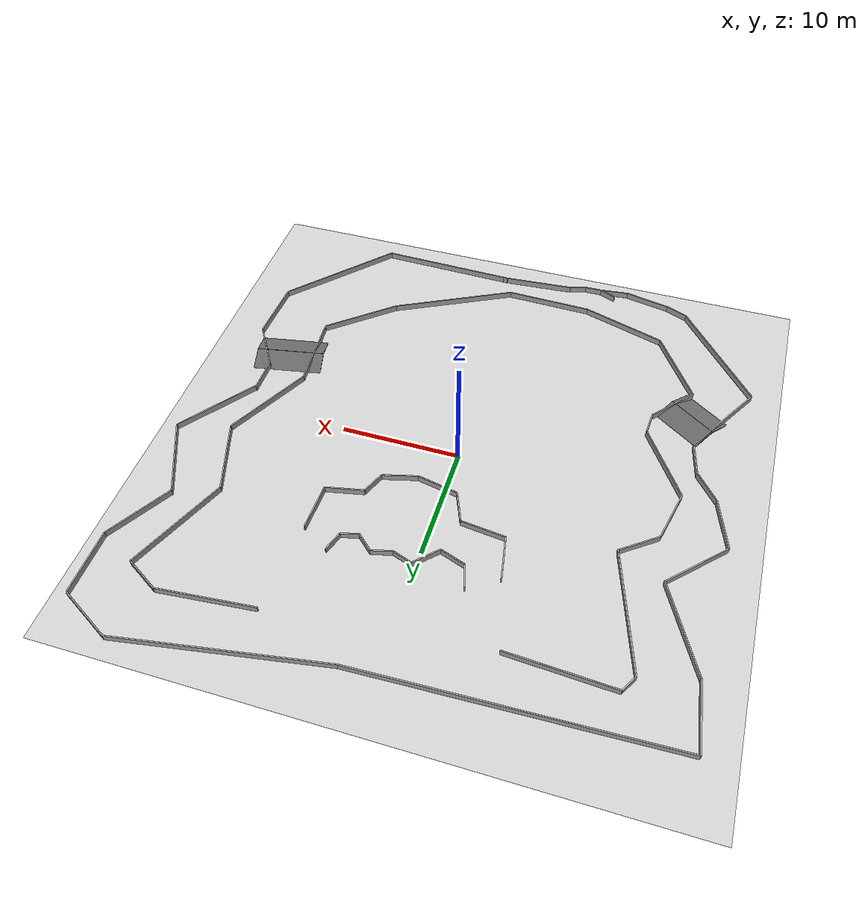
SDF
<sdf version="1.6">
 <world name="default">
  <model name="igvc_basic_ground">
   <static>1</static>
   <link name="link">
    <collision name="collision">
     <geometry><plane><normal>0 0 1</normal><size>50 50</size></plane></geometry>
     <surface><friction><ode><mu>100</mu><mu2>50</mu2></ode></friction></surface>
    </collision>
    <visual name="visual">
     <cast_shadows>0</cast_shadows>
     <geometry><plane><normal>0 0 1</normal><size>50 50</size></plane></geometry>
     <material>
      <script>
       <uri>model://igvc_basic_ground/materials/scripts</uri>
       <uri>model://igvc_basic_ground/materials/textures</uri>
       <name>igvc_basic_ground/Image</name>
      </script>
     </material>
    </visual>
    <velocity_decay><linear>0</linear><angular>0</angular></velocity_decay>
   </link>
  </model>
  <model name="ground_plane">
   <static>1</static>
   <link name="link">
    <visual name="visual">
     <geometry><plane><normal>0 0 1</normal><size>200 200</size></plane></geometry>
     <material>
      <script>
       <uri>model://igvc_basic_ground/materials/scripts</uri>
       <uri>model://igvc_basic_ground/materials/textures</uri>
       <name>igvc_basic_ground/grass</name>
      </script>
     </material>
    </visual>
   </link>
   <pose>0 0 -0.2 0 0 0</pose>
  </model>
  <light name="sun" type="directional">
   <pose>0 0 10 0 -0 0</pose>
   <diffuse>0.8 0.8 0.8 1</diffuse>
   <specular>0.2 0.2 0.2 1</specular>
   <attenuation>
    <range>1000</range>
    <constant>0.9</constant>
    <linear>0.01</linear>
    <quadratic>0.001</quadratic>
   </attenuation>
   <direction>-0.5 0.1 -0.9</direction>
  </light>
  <physics name="default_physics" default="0" type="ode">
   <max_step_size>0.001</max_step_size>
   <real_time_factor>1</real_time_factor>
   <real_time_update_rate>1000</real_time_update_rate>
  </physics>
  <scene><ambient>0.4 0.4 0.4 1</ambient><background>0.7 0.7 0.7 1</background><shadows>1</shadows></scene>
  <spherical_coordinates>
   <surface_model>EARTH_WGS84</surface_model>
   <latitude_deg>0</latitude_deg>
   <longitude_deg>0</longitude_deg>
   <elevation>0</elevation>
   <heading_deg>0</heading_deg>
  </spherical_coordinates>
  <model name="ramp1_up">
   <static>1</static>
   <pose>-18.4 -10.4 0.15 0.2612 -0 -0.6</pose>
   <link name="link">
    <collision name="collision"><geometry><box><size>4.5 2 0.1</size></box></geometry></collision>
    <visual name="visual">
     <geometry><box><size>4.5 2 0.1</size></box></geometry>
     <material>
      <ambient>0.8 1 0.8 1</ambient>
      <specular>0.2 0.2 0.2 64</specular>
      <diffuse>0.4 0.4 0.4 1</diffuse>
     </material>
    </visual>
   </link>
  </model>
  <model name="ramp1_down">
   <static>1</static>
   <pose>-17.3 -8.8414 0.15 0.2612 -0 2.5416</pose>
   <link name="link">
    <collision name="collision"><geometry><box><size>4.5 2 0.1</size></box></geometry></collision>
    <visual name="visual">
     <geometry><box><size>4.5 2 0.1</size></box></geometry>
     <material>
      <ambient>0.8 1 0.8 1</ambient>
      <specular>0.2 0.2 0.2 64</specular>
      <diffuse>0.4 0.4 0.4 1</diffuse>
     </material>
    </visual>
   </link>
  </model>
  <model name="ramp2_up">
   <static>1</static>
   <pose>17.6547 -6.1 0.15 0.2612 -0 -2.962</pose>
   <link name="link">
    <collision name="collision"><geometry><box><size>6 2 0.1</size></box></geometry></collision>
    <visual name="visual">
     <geometry><box><size>6 2 0.1</size></box></geometry>
     <material>
      <ambient>0.8 1 0.8 1</ambient>
      <specular>0.2 0.2 0.2 64</specular>
      <diffuse>0.4 0.4 0.4 1</diffuse>
     </material>
    </visual>
   </link>
  </model>
  <model name="ramp2_down">
   <static>1</static>
   <pose>18 -8 0.15 0.2612 -0 0.18</pose>
   <link name="link">
    <collision name="collision"><geometry><box><size>6 2 0.1</size></box></geometry></collision>
    <visual name="visual">
     <geometry><box><size>6 2 0.1</size></box></geometry>
     <material>
      <ambient>0.8 1 0.8 1</ambient>
      <specular>0.2 0.2 0.2 64</specular>
      <diffuse>0.4 0.4 0.4 1</diffuse>
     </material>
    </visual>
   </link>
  </model>
  <model name="outer_wall_1">
   <static>1</static>
   <pose>-1.2 -22.6 0 0 -0 0.07</pose>
   <link name="link">
    <collision name="collision"><geometry><box><size>6.5 0.1 1</size></box></geometry></collision>
    <visual name="visual"><geometry><box><size>6.5 0.1 1</size></box></geometry></visual>
   </link>
  </model>
  <model name="outer_wall_2">
   <static>1</static>
   <pose>-5.15 -23.05 0 0 -0 0.3</pose>
   <link name="link">
    <collision name="collision"><geometry><box><size>1.5 0.1 1</size></box></geometry></collision>
    <visual name="visual"><geometry><box><size>1.5 0.1 1</size></box></geometry></visual>
   </link>
  </model>
  <model name="outer_wall_3">
   <static>1</static>
   <pose>-6.61 -23.29 0 0 -0 0.02</pose>
   <link name="link">
    <collision name="collision"><geometry><box><size>1.5 0.1 1</size></box></geometry></collision>
    <visual name="visual"><geometry><box><size>1.5 0.1 1</size></box></geometry></visual>
   </link>
  </model>
  <model name="outer_wall_4">
   <static>1</static>
   <pose>-8.05 -23.01 0 0 0 -0.4</pose>
   <link name="link">
    <collision name="collision"><geometry><box><size>1.5 0.1 1</size></box></geometry></collision>
    <visual name="visual"><geometry><box><size>1.5 0.1 1</size></box></geometry></visual>
   </link>
  </model>
  <model name="outer_wall_5">
   <static>1</static>
   <pose>-8.6 -23.44 0 0 -0 0.11</pose>
   <link name="link">
    <collision name="collision"><geometry><box><size>2.5 0.1 1</size></box></geometry></collision>
    <visual name="visual"><geometry><box><size>2.5 0.1 1</size></box></geometry></visual>
   </link>
  </model>
  <model name="outer_wall_6">
   <static>1</static>
   <pose>-11.8 -23.18 0 0 0 -0.2</pose>
   <link name="link">
    <collision name="collision"><geometry><box><size>4 0.1 1</size></box></geometry></collision>
    <visual name="visual"><geometry><box><size>4 0.1 1</size></box></geometry></visual>
   </link>
  </model>
  <model name="outer_wall_7">
   <static>1</static>
   <pose>-14.68 -22.39 0 0 0 -0.4</pose>
   <link name="link">
    <collision name="collision"><geometry><box><size>2 0.1 1</size></box></geometry></collision>
    <visual name="visual"><geometry><box><size>2 0.1 1</size></box></geometry></visual>
   </link>
  </model>
  <model name="outer_wall_8">
   <static>1</static>
   <pose>-19.02 -17.69 0 0 0 -0.9</pose>
   <link name="link">
    <collision name="collision"><geometry><box><size>11 0.1 1</size></box></geometry></collision>
    <visual name="visual"><geometry><box><size>11 0.1 1</size></box></geometry></visual>
   </link>
  </model>
  <model name="outer_wall_9">
   <static>1</static>
   <pose>-20.42 -9.93 0 0 0 -2.1</pose>
   <link name="link">
    <collision name="collision"><geometry><box><size>8 0.1 1</size></box></geometry></collision>
    <visual name="visual"><geometry><box><size>8 0.1 1</size></box></geometry></visual>
   </link>
  </model>
  <model name="outer_wall_10">
   <static>1</static>
   <pose>-18.73 -5.01 0 0 0 -1.35</pose>
   <link name="link">
    <collision name="collision"><geometry><box><size>3 0.1 1</size></box></geometry></collision>
    <visual name="visual"><geometry><box><size>3 0.1 1</size></box></geometry></visual>
   </link>
  </model>
  <model name="outer_wall_11">
   <static>1</static>
   <pose>-19.99 -2.37 0 0 0 -0.9</pose>
   <link name="link">
    <collision name="collision"><geometry><box><size>3 0.1 1</size></box></geometry></collision>
    <visual name="visual"><geometry><box><size>3 0.1 1</size></box></geometry></visual>
   </link>
  </model>
  <model name="outer_wall_12">
   <static>1</static>
   <pose>-21.63 0.94 0 0 0 -1.25</pose>
   <link name="link">
    <collision name="collision"><geometry><box><size>4.5 0.1 1</size></box></geometry></collision>
    <visual name="visual"><geometry><box><size>4.5 0.1 1</size></box></geometry></visual>
   </link>
  </model>
  <model name="outer_wall_13">
   <static>1</static>
   <pose>-20.23 5.21 0 0 0 -2.35</pose>
   <link name="link">
    <collision name="collision"><geometry><box><size>6 0.1 1</size></box></geometry></collision>
    <visual name="visual"><geometry><box><size>6 0.1 1</size></box></geometry></visual>
   </link>
  </model>
  <model name="outer_wall_14">
   <static>1</static>
   <pose>-19.9 10.9 0 0 0 -1.1</pose>
   <link name="link">
    <collision name="collision"><geometry><box><size>8 0.1 1</size></box></geometry></collision>
    <visual name="visual"><geometry><box><size>8 0.1 1</size></box></geometry></visual>
   </link>
  </model>
  <model name="outer_wall_15">
   <static>1</static>
   <pose>-22.04 17.19 0 0 0 -1.45</pose>
   <link name="link">
    <collision name="collision"><geometry><box><size>5.5 0.1 1</size></box></geometry></collision>
    <visual name="visual"><geometry><box><size>5.5 0.1 1</size></box></geometry></visual>
   </link>
  </model>
  <model name="outer_wall_16">
   <static>1</static>
   <pose>-9.88 20.31 0 0 0 -3.11</pose>
   <link name="link">
    <collision name="collision"><geometry><box><size>25 0.1 1</size></box></geometry></collision>
    <visual name="visual"><geometry><box><size>25 0.1 1</size></box></geometry></visual>
   </link>
  </model>
  <model name="outer_wall_17">
   <static>1</static>
   <pose>11 22.07 0 0 0 -2.98</pose>
   <link name="link">
    <collision name="collision"><geometry><box><size>17 0.1 1</size></box></geometry></collision>
    <visual name="visual"><geometry><box><size>17 0.1 1</size></box></geometry></visual>
   </link>
  </model>
  <model name="outer_wall_18">
   <static>1</static>
   <pose>21.57 22.22 0 0 -0 2.63319</pose>
   <link name="link">
    <collision name="collision"><geometry><box><size>5 0.1 1</size></box></geometry></collision>
    <visual name="visual"><geometry><box><size>5 0.1 1</size></box></geometry></visual>
   </link>
  </model>
  <model name="outer_wall_19">
   <static>1</static>
   <pose>23.76 18.25 0 0 -0 1.57319</pose>
   <link name="link">
    <collision name="collision"><geometry><box><size>5.5 0.1 1</size></box></geometry></collision>
    <visual name="visual"><geometry><box><size>5.5 0.1 1</size></box></geometry></visual>
   </link>
  </model>
  <model name="outer_wall_20">
   <static>1</static>
   <pose>22.26 12.91 0 0 -0 1.04319</pose>
   <link name="link">
    <collision name="collision"><geometry><box><size>6 0.1 1</size></box></geometry></collision>
    <visual name="visual"><geometry><box><size>6 0.1 1</size></box></geometry></visual>
   </link>
  </model>
  <model name="outer_wall_21">
   <static>1</static>
   <pose>22.15 7.11 0 0 -0 1.98318</pose>
   <link name="link">
    <collision name="collision"><geometry><box><size>7 0.1 1</size></box></geometry></collision>
    <visual name="visual"><geometry><box><size>7 0.1 1</size></box></geometry></visual>
   </link>
  </model>
  <model name="outer_wall_22">
   <static>1</static>
   <pose>21.32 0.89 0 0 -0 0.933185</pose>
   <link name="link">
    <collision name="collision"><geometry><box><size>7.5 0.1 1</size></box></geometry></collision>
    <visual name="visual"><geometry><box><size>7.5 0.1 1</size></box></geometry></visual>
   </link>
  </model>
  <model name="outer_wall_23">
   <static>1</static>
   <pose>19.01 -3.62 0 0 -0 1.57319</pose>
   <link name="link">
    <collision name="collision"><geometry><box><size>3 0.1 1</size></box></geometry></collision>
    <visual name="visual"><geometry><box><size>3 0.1 1</size></box></geometry></visual>
   </link>
  </model>
  <model name="outer_wall_24">
   <static>1</static>
   <pose>20.21 -7.02 0 0 -0 2.13319</pose>
   <link name="link">
    <collision name="collision"><geometry><box><size>4.5 0.1 1</size></box></geometry></collision>
    <visual name="visual"><geometry><box><size>4.5 0.1 1</size></box></geometry></visual>
   </link>
  </model>
  <model name="outer_wall_25">
   <static>1</static>
   <pose>21.31 -11.67 0 0 -0 1.53319</pose>
   <link name="link">
    <collision name="collision"><geometry><box><size>5.5 0.1 1</size></box></geometry></collision>
    <visual name="visual"><geometry><box><size>5.5 0.1 1</size></box></geometry></visual>
   </link>
  </model>
  <model name="outer_wall_26">
   <static>1</static>
   <pose>17.42 -18.58 0 0 -0 0.833185</pose>
   <link name="link">
    <collision name="collision"><geometry><box><size>11.25 0.1 1</size></box></geometry></collision>
    <visual name="visual"><geometry><box><size>11.25 0.1 1</size></box></geometry></visual>
   </link>
  </model>
  <model name="outer_wall_27">
   <static>1</static>
   <pose>7.64 -22.57 0 0 0 -0.028815</pose>
   <link name="link">
    <collision name="collision"><geometry><box><size>12 0.1 1</size></box></geometry></collision>
    <visual name="visual"><geometry><box><size>12 0.1 1</size></box></geometry></visual>
   </link>
  </model>
  <model name="inner_wall_1">
   <static>1</static>
   <pose>13.8 18.5 0 0 0 -3.05319</pose>
   <link name="link">
    <collision name="collision"><geometry><box><size>8 0.1 1</size></box></geometry></collision>
    <visual name="visual"><geometry><box><size>8 0.1 1</size></box></geometry></visual>
   </link>
  </model>
  <model name="inner_wall_2">
   <static>1</static>
   <pose>19.19 18.05 0 0 -0 2.61</pose>
   <link name="link">
    <collision name="collision"><geometry><box><size>3.25 0.1 1</size></box></geometry></collision>
    <visual name="visual"><geometry><box><size>3.25 0.1 1</size></box></geometry></visual>
   </link>
  </model>
  <model name="inner_wall_3">
   <static>1</static>
   <pose>18.88 13.07 0 0 -0 1.18</pose>
   <link name="link">
    <collision name="collision"><geometry><box><size>9 0.1 1</size></box></geometry></collision>
    <visual name="visual"><geometry><box><size>9 0.1 1</size></box></geometry></visual>
   </link>
  </model>
  <model name="inner_wall_4">
   <static>1</static>
   <pose>18.15 5.81 0 0 -0 1.88</pose>
   <link name="link">
    <collision name="collision"><geometry><box><size>6.5 0.1 1</size></box></geometry></collision>
    <visual name="visual"><geometry><box><size>6.5 0.1 1</size></box></geometry></visual>
   </link>
  </model>
  <model name="inner_wall_5">
   <static>1</static>
   <pose>17.32 -0.85 0 0 -0 1.1</pose>
   <link name="link">
    <collision name="collision"><geometry><box><size>8 0.1 1</size></box></geometry></collision>
    <visual name="visual"><geometry><box><size>8 0.1 1</size></box></geometry></visual>
   </link>
  </model>
  <model name="inner_wall_6">
   <static>1</static>
   <pose>15.76 -7.65 0 0 -0 1.65</pose>
   <link name="link">
    <collision name="collision"><geometry><box><size>6.5 0.1 1</size></box></geometry></collision>
    <visual name="visual"><geometry><box><size>6.5 0.1 1</size></box></geometry></visual>
   </link>
  </model>
  <model name="inner_wall_7">
   <static>1</static>
   <pose>13.34 -13.25 0 0 -0 0.7</pose>
   <link name="link">
    <collision name="collision"><geometry><box><size>7 0.1 1</size></box></geometry></collision>
    <visual name="visual"><geometry><box><size>7 0.1 1</size></box></geometry></visual>
   </link>
  </model>
  <model name="inner_wall_8">
   <static>1</static>
   <pose>5.76 -17.99 0 0 -0 0.47</pose>
   <link name="link">
    <collision name="collision"><geometry><box><size>11 0.1 1</size></box></geometry></collision>
    <visual name="visual"><geometry><box><size>11 0.1 1</size></box></geometry></visual>
   </link>
  </model>
  <model name="inner_wall_9">
   <static>1</static>
   <pose>-2.89 -20.37 0 0 0 -0.03</pose>
   <link name="link">
    <collision name="collision"><geometry><box><size>7.5 0.1 1</size></box></geometry></collision>
    <visual name="visual"><geometry><box><size>7.5 0.1 1</size></box></geometry></visual>
   </link>
  </model>
  <model name="inner_wall_10">
   <static>1</static>
   <pose>-10.22 -19.14 0 0 0 -0.3</pose>
   <link name="link">
    <collision name="collision"><geometry><box><size>7.5 0.1 1</size></box></geometry></collision>
    <visual name="visual"><geometry><box><size>7.5 0.1 1</size></box></geometry></visual>
   </link>
  </model>
  <model name="inner_wall_11">
   <static>1</static>
   <pose>-15.69 -15.09 0 0 0 -1</pose>
   <link name="link">
    <collision name="collision"><geometry><box><size>7 0.1 1</size></box></geometry></collision>
    <visual name="visual"><geometry><box><size>7 0.1 1</size></box></geometry></visual>
   </link>
  </model>
  <model name="inner_wall_12">
   <static>1</static>
   <pose>-16.08 -10.47 0 0 0 -2.3</pose>
   <link name="link">
    <collision name="collision"><geometry><box><size>4.5 0.1 1</size></box></geometry></collision>
    <visual name="visual"><geometry><box><size>4.5 0.1 1</size></box></geometry></visual>
   </link>
  </model>
  <model name="inner_wall_13">
   <static>1</static>
   <pose>-14.5 -7.8 0 0 0 -1.65</pose>
   <link name="link">
    <collision name="collision"><geometry><box><size>2 0.1 1</size></box></geometry></collision>
    <visual name="visual"><geometry><box><size>2 0.1 1</size></box></geometry></visual>
   </link>
  </model>
  <model name="inner_wall_14">
   <static>1</static>
   <pose>-16.18 -4.07 0 0 0 -1</pose>
   <link name="link">
    <collision name="collision"><geometry><box><size>6.5 0.1 1</size></box></geometry></collision>
    <visual name="visual"><geometry><box><size>6.5 0.1 1</size></box></geometry></visual>
   </link>
  </model>
  <model name="inner_wall_15">
   <static>1</static>
   <pose>-16.31 -3.86 0 0 0 -1</pose>
   <link name="link">
    <collision name="collision"><geometry><box><size>7 0.1 1</size></box></geometry></collision>
    <visual name="visual"><geometry><box><size>7 0.1 1</size></box></geometry></visual>
   </link>
  </model>
  <model name="inner_wall_16">
   <static>1</static>
   <pose>-17.69 1.28 0 0 0 -1.8</pose>
   <link name="link">
    <collision name="collision"><geometry><box><size>4.5 0.1 1</size></box></geometry></collision>
    <visual name="visual"><geometry><box><size>4.5 0.1 1</size></box></geometry></visual>
   </link>
  </model>
  <model name="inner_wall_17">
   <static>1</static>
   <pose>-15.78 4.52 0 0 0 -2.5</pose>
   <link name="link">
    <collision name="collision"><geometry><box><size>3.5 0.1 1</size></box></geometry></collision>
    <visual name="visual"><geometry><box><size>3.5 0.1 1</size></box></geometry></visual>
   </link>
  </model>
  <model name="inner_wall_18">
   <static>1</static>
   <pose>-15.83 10.58 0 0 0 -1.27</pose>
   <link name="link">
    <collision name="collision"><geometry><box><size>10.5 0.1 1</size></box></geometry></collision>
    <visual name="visual"><geometry><box><size>10.5 0.1 1</size></box></geometry></visual>
   </link>
  </model>
  <model name="inner_wall_19">
   <static>1</static>
   <pose>-17.01 16.24 0 0 0 -2.1</pose>
   <link name="link">
    <collision name="collision"><geometry><box><size>1.5 0.1 1</size></box></geometry></collision>
    <visual name="visual"><geometry><box><size>1.5 0.1 1</size></box></geometry></visual>
   </link>
  </model>
  <model name="inner_wall_20">
   <static>1</static>
   <pose>-12.26 16.63 0 0 -0 3.08318</pose>
   <link name="link">
    <collision name="collision"><geometry><box><size>8.75 0.1 1</size></box></geometry></collision>
    <visual name="visual"><geometry><box><size>8.75 0.1 1</size></box></geometry></visual>
   </link>
  </model>
  <model name="center_lower_wall_1">
   <static>1</static>
   <pose>9.25 8.5 0 0 -0 1.55</pose>
   <link name="link">
    <collision name="collision"><geometry><box><size>4 0.1 1</size></box></geometry></collision>
    <visual name="visual"><geometry><box><size>4 0.1 1</size></box></geometry></visual>
   </link>
  </model>
  <model name="center_lower_wall_2">
   <static>1</static>
   <pose>7.62 6.18 0 0 -0 0.2</pose>
   <link name="link">
    <collision name="collision"><geometry><box><size>3.25 0.1 1</size></box></geometry></collision>
    <visual name="visual"><geometry><box><size>3.25 0.1 1</size></box></geometry></visual>
   </link>
  </model>
  <model name="center_lower_wall_3">
   <static>1</static>
   <pose>5.65 4.93 0 0 -0 1.18</pose>
   <link name="link">
    <collision name="collision"><geometry><box><size>2 0.1 1</size></box></geometry></collision>
    <visual name="visual"><geometry><box><size>2 0.1 1</size></box></geometry></visual>
   </link>
  </model>
  <model name="center_lower_wall_4">
   <static>1</static>
   <pose>3.82 3.63 0 0 -0 0.25</pose>
   <link name="link">
    <collision name="collision"><geometry><box><size>3 0.1 1</size></box></geometry></collision>
    <visual name="visual"><geometry><box><size>3 0.1 1</size></box></geometry></visual>
   </link>
  </model>
  <model name="center_lower_wall_5">
   <static>1</static>
   <pose>0.65 3.61 0 0 0 -0.2</pose>
   <link name="link">
    <collision name="collision"><geometry><box><size>3.5 0.1 1</size></box></geometry></collision>
    <visual name="visual"><geometry><box><size>3.5 0.1 1</size></box></geometry></visual>
   </link>
  </model>
  <model name="center_lower_wall_6">
   <static>1</static>
   <pose>-1.59 5.23 0 0 0 -1.18</pose>
   <link name="link">
    <collision name="collision"><geometry><box><size>2.75 0.1 1</size></box></geometry></collision>
    <visual name="visual"><geometry><box><size>2.75 0.1 1</size></box></geometry></visual>
   </link>
  </model>
  <model name="center_lower_wall_7">
   <static>1</static>
   <pose>-3.98 6.73 0 0 0 -0.12</pose>
   <link name="link">
    <collision name="collision"><geometry><box><size>3.75 0.1 1</size></box></geometry></collision>
    <visual name="visual"><geometry><box><size>3.75 0.1 1</size></box></geometry></visual>
   </link>
  </model>
  <model name="center_lower_wall_8">
   <static>1</static>
   <pose>-6.16 8.8 0 0 0 -1.4</pose>
   <link name="link">
    <collision name="collision"><geometry><box><size>3.75 0.1 1</size></box></geometry></collision>
    <visual name="visual"><geometry><box><size>3.75 0.1 1</size></box></geometry></visual>
   </link>
  </model>
  <model name="center_upper_wall_1">
   <static>1</static>
   <pose>-3.8 11.2 0 0 -0 1.84</pose>
   <link name="link">
    <collision name="collision"><geometry><box><size>2 0.1 1</size></box></geometry></collision>
    <visual name="visual"><geometry><box><size>2 0.1 1</size></box></geometry></visual>
   </link>
  </model>
  <model name="center_upper_wall_2">
   <static>1</static>
   <pose>-2.47 9.86 0 0 -0 2.8</pose>
   <link name="link">
    <collision name="collision"><geometry><box><size>2.25 0.1 1</size></box></geometry></collision>
    <visual name="visual"><geometry><box><size>2.25 0.1 1</size></box></geometry></visual>
   </link>
  </model>
  <model name="center_upper_wall_3">
   <static>1</static>
   <pose>-0.53 10.37 0 0 -0 -2.35318</pose>
   <link name="link">
    <collision name="collision"><geometry><box><size>2.5 0.1 1</size></box></geometry></collision>
    <visual name="visual"><geometry><box><size>2.5 0.1 1</size></box></geometry></visual>
   </link>
  </model>
  <model name="center_upper_wall_4">
   <static>1</static>
   <pose>1.18 10.96 0 0 -0 2.8</pose>
   <link name="link">
    <collision name="collision"><geometry><box><size>1.75 0.1 1</size></box></geometry></collision>
    <visual name="visual"><geometry><box><size>1.75 0.1 1</size></box></geometry></visual>
   </link>
  </model>
  <model name="center_upper_wall_5">
   <static>1</static>
   <pose>2.85 10.89 0 0 -0 -2.88319</pose>
   <link name="link">
    <collision name="collision"><geometry><box><size>1.75 0.1 1</size></box></geometry></collision>
    <visual name="visual"><geometry><box><size>1.75 0.1 1</size></box></geometry></visual>
   </link>
  </model>
  <model name="center_upper_wall_6">
   <static>1</static>
   <pose>4.34 10.52 0 0 -0 2.4</pose>
   <link name="link">
    <collision name="collision"><geometry><box><size>1.75 0.1 1</size></box></geometry></collision>
    <visual name="visual"><geometry><box><size>1.75 0.1 1</size></box></geometry></visual>
   </link>
  </model>
  <model name="center_upper_wall_7">
   <static>1</static>
   <pose>5.71 10.12 0 0 -0 -2.88319</pose>
   <link name="link">
    <collision name="collision"><geometry><box><size>1.5 0.1 1</size></box></geometry></collision>
    <visual name="visual"><geometry><box><size>1.5 0.1 1</size></box></geometry></visual>
   </link>
  </model>
  <model name="center_upper_wall_8">
   <static>1</static>
   <pose>6.7 11.14 0 0 -0 -1.88319</pose>
   <link name="link">
    <collision name="collision"><geometry><box><size>1.75 0.1 1</size></box></geometry></collision>
    <visual name="visual"><geometry><box><size>1.75 0.1 1</size></box></geometry></visual>
   </link>
  </model>
  <gravity>0 0 -9.8</gravity>
  <magnetic_field>6e-06 2.3e-05 -4.2e-05</magnetic_field>
  <atmosphere type="adiabatic"/>
  <audio><device>default</device></audio>
 </world>
</sdf>
